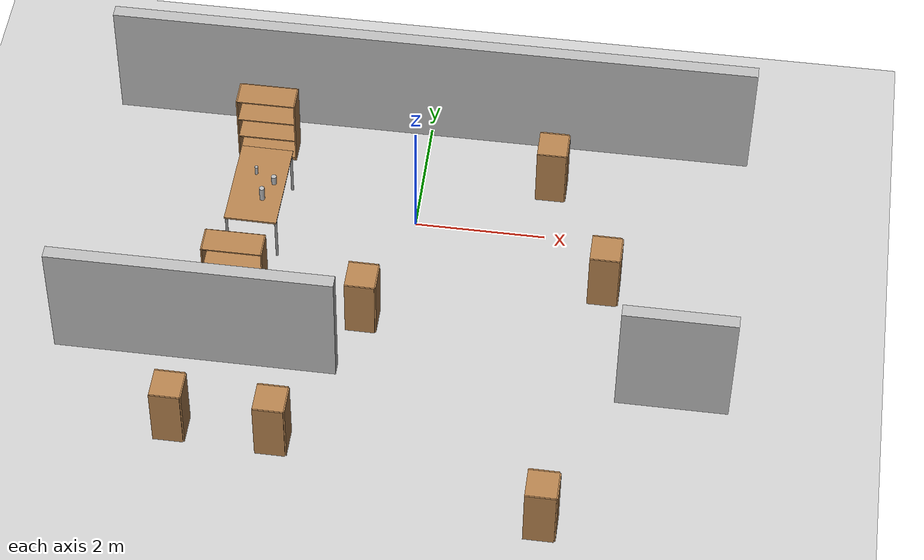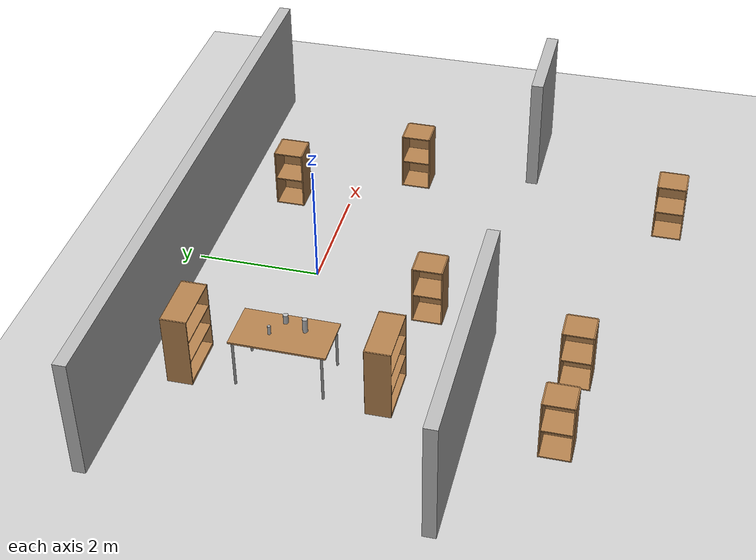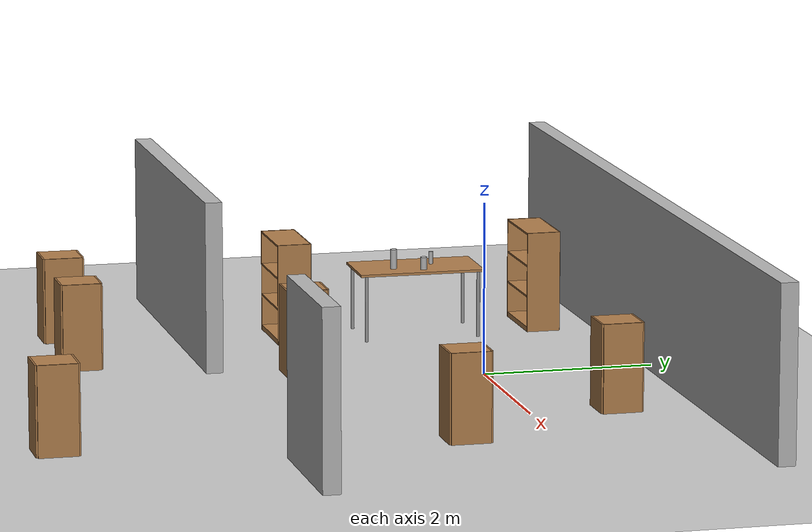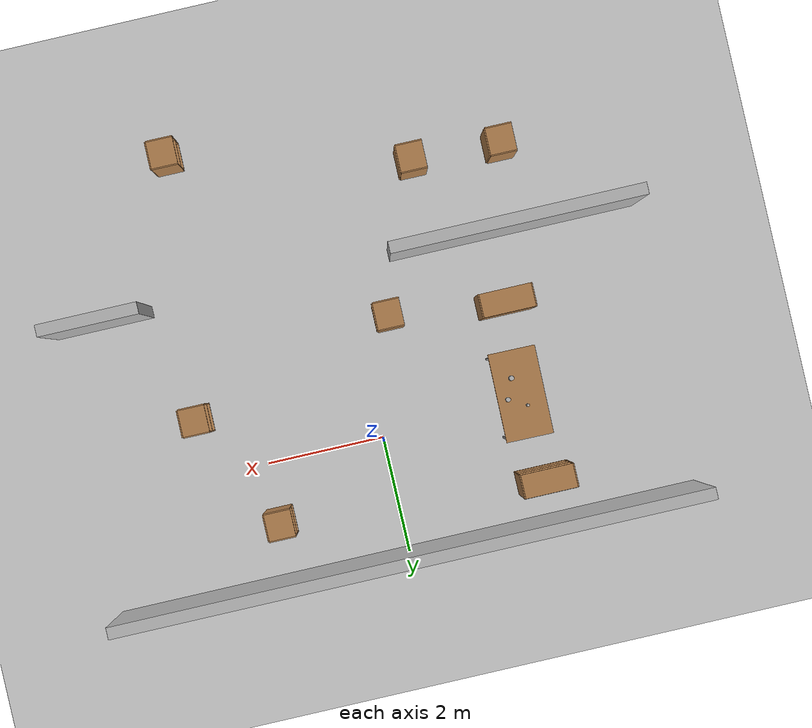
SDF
<sdf version="1.7">
 <world name="default">
  <model name="ground_plane">
   <static>1</static>
   <link name="link">
    <collision name="collision">
     <geometry><plane><normal>0 0 1</normal><size>100 100</size></plane></geometry>
     <surface><friction><ode><mu>100</mu><mu2>50</mu2></ode></friction></surface>
    </collision>
    <visual name="visual">
     <cast_shadows>0</cast_shadows>
     <geometry><plane><normal>0 0 1</normal><size>100 100</size></plane></geometry>
     <material>
      <script><uri>file://media/materials/scripts/gazebo.material</uri><name>Gazebo/Grey</name></script>
     </material>
    </visual>
    <velocity_decay><linear>0</linear><angular>0</angular></velocity_decay>
   </link>
  </model>
  <model name="wall_2_model">
   <pose>0 2 1 0 -0 0</pose>
   <static>1</static>
   <link name="wall_2_body">
    <inertial>
     <mass>1</mass>
     <inertia><ixx>1</ixx><ixy>0</ixy><ixz>0</ixz><iyy>1</iyy><iyz>0</iyz><izz>1</izz></inertia>
    </inertial>
    <collision name="collision"><geometry><box><size>10 0.2 2</size></box></geometry></collision>
    <visual name="visual"><geometry><box><size>10 0.2 2</size></box></geometry></visual>
    <velocity_decay><linear>0</linear><angular>0</angular></velocity_decay>
   </link>
  </model>
  <model name="wall_5_model">
   <pose>-2.89886 -3 1 0 -0 0</pose>
   <static>1</static>
   <link name="wall_5_body">
    <inertial>
     <mass>1</mass>
     <inertia><ixx>1</ixx><ixy>0</ixy><ixz>0</ixz><iyy>1</iyy><iyz>0</iyz><izz>1</izz></inertia>
    </inertial>
    <collision name="collision"><geometry><box><size>4.24454 0.2 2</size></box></geometry></collision>
    <visual name="visual"><geometry><box><size>4.24454 0.2 2</size></box></geometry></visual>
    <velocity_decay><linear>0</linear><angular>0</angular></velocity_decay>
   </link>
  </model>
  <model name="wall_6_model">
   <pose>4.18871 -2.96928 1 0 -0 0</pose>
   <static>1</static>
   <link name="wall_6_body">
    <inertial>
     <mass>1</mass>
     <inertia><ixx>1</ixx><ixy>0</ixy><ixz>0</ixz><iyy>1</iyy><iyz>0</iyz><izz>1</izz></inertia>
    </inertial>
    <collision name="collision"><geometry><box><size>1.67243 0.2 2</size></box></geometry></collision>
    <visual name="visual"><geometry><box><size>1.67243 0.2 2</size></box></geometry></visual>
    <velocity_decay><linear>0</linear><angular>0</angular></velocity_decay>
   </link>
  </model>
  <model name="cabinet">
   <static>0</static>
   <link name="cabinet_bottom_plate">
    <inertial>
     <pose>0 0 -1 0 -0 0</pose>
     <inertia><ixx>2.05</ixx><ixy>0</ixy><ixz>0</ixz><iyy>2.05</iyy><iyz>0</iyz><izz>2.05</izz></inertia>
     <mass>25</mass>
    </inertial>
    <collision name="cabinet_bottom_plate_geom">
     <pose>0 0 0.01 0 -0 0</pose>
     <geometry><box><size>0.45 0.45 0.02</size></box></geometry>
    </collision>
    <visual name="cabinet_bottom_plate_geom_visual">
     <pose>0 0 0.01 0 -0 0</pose>
     <geometry><box><size>0.45 0.45 0.02</size></box></geometry>
     <material>
      <script><uri>file://media/materials/scripts/gazebo.material</uri><name>Gazebo/Wood</name></script>
     </material>
    </visual>
    <collision name="cabinet_bottom_plate_geom_cabinet_back_plate">
     <pose>0.235 0 0.51 0 -0 0</pose>
     <geometry><box><size>0.02 0.45 1.02</size></box></geometry>
    </collision>
    <visual name="cabinet_bottom_plate_geom_cabinet_back_plate_visual">
     <pose>0.235 0 0.51 0 -0 0</pose>
     <geometry><box><size>0.02 0.45 1.02</size></box></geometry>
     <material>
      <script><uri>file://media/materials/scripts/gazebo.material</uri><name>Gazebo/Wood</name></script>
     </material>
    </visual>
    <collision name="cabinet_bottom_plate_geom_cabinet_left_plate">
     <pose>0 0.235 0.51 0 -0 0</pose>
     <geometry><box><size>0.45 0.02 1.02</size></box></geometry>
    </collision>
    <visual name="cabinet_bottom_plate_geom_cabinet_left_plate_visual">
     <pose>0 0.235 0.51 0 -0 0</pose>
     <geometry><box><size>0.45 0.02 1.02</size></box></geometry>
     <material>
      <script><uri>file://media/materials/scripts/gazebo.material</uri><name>Gazebo/Wood</name></script>
     </material>
    </visual>
    <collision name="cabinet_bottom_plate_geom_cabinet_middle_plate">
     <pose>0 0 0.51 0 -0 0</pose>
     <geometry><box><size>0.45 0.45 0.02</size></box></geometry>
    </collision>
    <visual name="cabinet_bottom_plate_geom_cabinet_middle_plate_visual">
     <pose>0 0 0.51 0 -0 0</pose>
     <geometry><box><size>0.45 0.45 0.02</size></box></geometry>
     <material>
      <script><uri>file://media/materials/scripts/gazebo.material</uri><name>Gazebo/Wood</name></script>
     </material>
    </visual>
    <collision name="cabinet_bottom_plate_geom_cabinet_right_plate">
     <pose>0 -0.235 0.51 0 -0 0</pose>
     <geometry><box><size>0.45 0.02 1.02</size></box></geometry>
    </collision>
    <visual name="cabinet_bottom_plate_geom_cabinet_right_plate_visual">
     <pose>0 -0.235 0.51 0 -0 0</pose>
     <geometry><box><size>0.45 0.02 1.02</size></box></geometry>
     <material>
      <script><uri>file://media/materials/scripts/gazebo.material</uri><name>Gazebo/Wood</name></script>
     </material>
    </visual>
    <collision name="cabinet_bottom_plate_geom_cabinet_top_plate">
     <pose>0 0 1.01 0 -0 0</pose>
     <geometry><box><size>0.45 0.45 0.02</size></box></geometry>
    </collision>
    <visual name="cabinet_bottom_plate_geom_cabinet_top_plate_visual">
     <pose>0 0 1.01 0 -0 0</pose>
     <geometry><box><size>0.45 0.45 0.02</size></box></geometry>
     <material>
      <script><uri>file://media/materials/scripts/gazebo.material</uri><name>Gazebo/Wood</name></script>
     </material>
    </visual>
    <velocity_decay><linear>0</linear><angular>0</angular></velocity_decay>
   </link>
   <pose>1.99517 1.00009 0 0 -1e-06 -0.000426</pose>
  </model>
  <model name="cabinet_0">
   <static>0</static>
   <link name="cabinet_bottom_plate">
    <inertial>
     <pose>0 0 -1 0 -0 0</pose>
     <inertia><ixx>2.05</ixx><ixy>0</ixy><ixz>0</ixz><iyy>2.05</iyy><iyz>0</iyz><izz>2.05</izz></inertia>
     <mass>25</mass>
    </inertial>
    <collision name="cabinet_bottom_plate_geom">
     <pose>0 0 0.01 0 -0 0</pose>
     <geometry><box><size>0.45 0.45 0.02</size></box></geometry>
    </collision>
    <visual name="cabinet_bottom_plate_geom_visual">
     <pose>0 0 0.01 0 -0 0</pose>
     <geometry><box><size>0.45 0.45 0.02</size></box></geometry>
     <material>
      <script><uri>file://media/materials/scripts/gazebo.material</uri><name>Gazebo/Wood</name></script>
     </material>
    </visual>
    <collision name="cabinet_bottom_plate_geom_cabinet_back_plate">
     <pose>0.235 0 0.51 0 -0 0</pose>
     <geometry><box><size>0.02 0.45 1.02</size></box></geometry>
    </collision>
    <visual name="cabinet_bottom_plate_geom_cabinet_back_plate_visual">
     <pose>0.235 0 0.51 0 -0 0</pose>
     <geometry><box><size>0.02 0.45 1.02</size></box></geometry>
     <material>
      <script><uri>file://media/materials/scripts/gazebo.material</uri><name>Gazebo/Wood</name></script>
     </material>
    </visual>
    <collision name="cabinet_bottom_plate_geom_cabinet_left_plate">
     <pose>0 0.235 0.51 0 -0 0</pose>
     <geometry><box><size>0.45 0.02 1.02</size></box></geometry>
    </collision>
    <visual name="cabinet_bottom_plate_geom_cabinet_left_plate_visual">
     <pose>0 0.235 0.51 0 -0 0</pose>
     <geometry><box><size>0.45 0.02 1.02</size></box></geometry>
     <material>
      <script><uri>file://media/materials/scripts/gazebo.material</uri><name>Gazebo/Wood</name></script>
     </material>
    </visual>
    <collision name="cabinet_bottom_plate_geom_cabinet_middle_plate">
     <pose>0 0 0.51 0 -0 0</pose>
     <geometry><box><size>0.45 0.45 0.02</size></box></geometry>
    </collision>
    <visual name="cabinet_bottom_plate_geom_cabinet_middle_plate_visual">
     <pose>0 0 0.51 0 -0 0</pose>
     <geometry><box><size>0.45 0.45 0.02</size></box></geometry>
     <material>
      <script><uri>file://media/materials/scripts/gazebo.material</uri><name>Gazebo/Wood</name></script>
     </material>
    </visual>
    <collision name="cabinet_bottom_plate_geom_cabinet_right_plate">
     <pose>0 -0.235 0.51 0 -0 0</pose>
     <geometry><box><size>0.45 0.02 1.02</size></box></geometry>
    </collision>
    <visual name="cabinet_bottom_plate_geom_cabinet_right_plate_visual">
     <pose>0 -0.235 0.51 0 -0 0</pose>
     <geometry><box><size>0.45 0.02 1.02</size></box></geometry>
     <material>
      <script><uri>file://media/materials/scripts/gazebo.material</uri><name>Gazebo/Wood</name></script>
     </material>
    </visual>
    <collision name="cabinet_bottom_plate_geom_cabinet_top_plate">
     <pose>0 0 1.01 0 -0 0</pose>
     <geometry><box><size>0.45 0.45 0.02</size></box></geometry>
    </collision>
    <visual name="cabinet_bottom_plate_geom_cabinet_top_plate_visual">
     <pose>0 0 1.01 0 -0 0</pose>
     <geometry><box><size>0.45 0.45 0.02</size></box></geometry>
     <material>
      <script><uri>file://media/materials/scripts/gazebo.material</uri><name>Gazebo/Wood</name></script>
     </material>
    </visual>
    <velocity_decay><linear>0</linear><angular>0</angular></velocity_decay>
   </link>
   <pose>2.51075 -5.43934 0 0 -1e-06 -0.003769</pose>
  </model>
  <model name="bookshelf_0">
   <static>0</static>
   <link name="link">
    <inertial>
     <mass>1</mass>
     <inertia><ixx>1</ixx><ixy>0</ixy><ixz>0</ixz><iyy>1</iyy><iyz>0</iyz><izz>1</izz></inertia>
    </inertial>
    <collision name="back">
     <pose>0 0.005 0.6 0 -0 0</pose>
     <geometry><box><size>0.9 0.01 1.2</size></box></geometry>
    </collision>
    <visual name="visual1">
     <pose>0 0.005 0.6 0 -0 0</pose>
     <geometry><box><size>0.9 0.01 1.2</size></box></geometry>
     <material>
      <script><uri>file://media/materials/scripts/gazebo.material</uri><name>Gazebo/Wood</name></script>
     </material>
    </visual>
    <collision name="left_side">
     <pose>0.45 -0.195 0.6 0 -0 0</pose>
     <geometry><box><size>0.02 0.4 1.2</size></box></geometry>
    </collision>
    <visual name="visual2">
     <pose>0.45 -0.195 0.6 0 -0 0</pose>
     <geometry><box><size>0.02 0.4 1.2</size></box></geometry>
     <material>
      <script><uri>file://media/materials/scripts/gazebo.material</uri><name>Gazebo/Wood</name></script>
     </material>
    </visual>
    <collision name="right_side">
     <pose>-0.45 -0.195 0.6 0 -0 0</pose>
     <geometry><box><size>0.02 0.4 1.2</size></box></geometry>
    </collision>
    <visual name="visual3">
     <pose>-0.45 -0.195 0.6 0 -0 0</pose>
     <geometry><box><size>0.02 0.4 1.2</size></box></geometry>
     <material>
      <script><uri>file://media/materials/scripts/gazebo.material</uri><name>Gazebo/Wood</name></script>
     </material>
    </visual>
    <collision name="bottom">
     <pose>0 -0.195 0.03 0 -0 0</pose>
     <geometry><box><size>0.88 0.4 0.06</size></box></geometry>
    </collision>
    <visual name="visual4">
     <pose>0 -0.195 0.03 0 -0 0</pose>
     <geometry><box><size>0.88 0.4 0.06</size></box></geometry>
     <material>
      <script><uri>file://media/materials/scripts/gazebo.material</uri><name>Gazebo/Wood</name></script>
     </material>
    </visual>
    <collision name="top">
     <pose>0 -0.195 1.19 0 -0 0</pose>
     <geometry><box><size>0.88 0.4 0.02</size></box></geometry>
    </collision>
    <visual name="visual5">
     <pose>0 -0.195 1.19 0 -0 0</pose>
     <geometry><box><size>0.88 0.4 0.02</size></box></geometry>
     <material>
      <script><uri>file://media/materials/scripts/gazebo.material</uri><name>Gazebo/Wood</name></script>
     </material>
    </visual>
    <collision name="low_shelf">
     <pose>0 -0.195 0.43 0 -0 0</pose>
     <geometry><box><size>0.88 0.4 0.02</size></box></geometry>
    </collision>
    <visual name="visual6">
     <pose>0 -0.195 0.43 0 -0 0</pose>
     <geometry><box><size>0.88 0.4 0.02</size></box></geometry>
     <material>
      <script><uri>file://media/materials/scripts/gazebo.material</uri><name>Gazebo/Wood</name></script>
     </material>
    </visual>
    <collision name="high_shelf">
     <pose>0 -0.195 0.8 0 -0 0</pose>
     <geometry><box><size>0.88 0.4 0.02</size></box></geometry>
    </collision>
    <visual name="visual7">
     <pose>0 -0.195 0.8 0 -0 0</pose>
     <geometry><box><size>0.88 0.4 0.02</size></box></geometry>
     <material>
      <script><uri>file://media/materials/scripts/gazebo.material</uri><name>Gazebo/Wood</name></script>
     </material>
    </visual>
    <velocity_decay><linear>0</linear><angular>0</angular></velocity_decay>
   </link>
   <pose>-2.49657 -1.57894 0 -1.7e-05 0 0</pose>
  </model>
  <model name="bookshelf_1">
   <static>0</static>
   <link name="link">
    <inertial>
     <mass>1</mass>
     <inertia><ixx>1</ixx><ixy>0</ixy><ixz>0</ixz><iyy>1</iyy><iyz>0</iyz><izz>1</izz></inertia>
    </inertial>
    <collision name="back">
     <pose>0 0.005 0.6 0 -0 0</pose>
     <geometry><box><size>0.9 0.01 1.2</size></box></geometry>
    </collision>
    <visual name="visual1">
     <pose>0 0.005 0.6 0 -0 0</pose>
     <geometry><box><size>0.9 0.01 1.2</size></box></geometry>
     <material>
      <script><uri>file://media/materials/scripts/gazebo.material</uri><name>Gazebo/Wood</name></script>
     </material>
    </visual>
    <collision name="left_side">
     <pose>0.45 -0.195 0.6 0 -0 0</pose>
     <geometry><box><size>0.02 0.4 1.2</size></box></geometry>
    </collision>
    <visual name="visual2">
     <pose>0.45 -0.195 0.6 0 -0 0</pose>
     <geometry><box><size>0.02 0.4 1.2</size></box></geometry>
     <material>
      <script><uri>file://media/materials/scripts/gazebo.material</uri><name>Gazebo/Wood</name></script>
     </material>
    </visual>
    <collision name="right_side">
     <pose>-0.45 -0.195 0.6 0 -0 0</pose>
     <geometry><box><size>0.02 0.4 1.2</size></box></geometry>
    </collision>
    <visual name="visual3">
     <pose>-0.45 -0.195 0.6 0 -0 0</pose>
     <geometry><box><size>0.02 0.4 1.2</size></box></geometry>
     <material>
      <script><uri>file://media/materials/scripts/gazebo.material</uri><name>Gazebo/Wood</name></script>
     </material>
    </visual>
    <collision name="bottom">
     <pose>0 -0.195 0.03 0 -0 0</pose>
     <geometry><box><size>0.88 0.4 0.06</size></box></geometry>
    </collision>
    <visual name="visual4">
     <pose>0 -0.195 0.03 0 -0 0</pose>
     <geometry><box><size>0.88 0.4 0.06</size></box></geometry>
     <material>
      <script><uri>file://media/materials/scripts/gazebo.material</uri><name>Gazebo/Wood</name></script>
     </material>
    </visual>
    <collision name="top">
     <pose>0 -0.195 1.19 0 -0 0</pose>
     <geometry><box><size>0.88 0.4 0.02</size></box></geometry>
    </collision>
    <visual name="visual5">
     <pose>0 -0.195 1.19 0 -0 0</pose>
     <geometry><box><size>0.88 0.4 0.02</size></box></geometry>
     <material>
      <script><uri>file://media/materials/scripts/gazebo.material</uri><name>Gazebo/Wood</name></script>
     </material>
    </visual>
    <collision name="low_shelf">
     <pose>0 -0.195 0.43 0 -0 0</pose>
     <geometry><box><size>0.88 0.4 0.02</size></box></geometry>
    </collision>
    <visual name="visual6">
     <pose>0 -0.195 0.43 0 -0 0</pose>
     <geometry><box><size>0.88 0.4 0.02</size></box></geometry>
     <material>
      <script><uri>file://media/materials/scripts/gazebo.material</uri><name>Gazebo/Wood</name></script>
     </material>
    </visual>
    <collision name="high_shelf">
     <pose>0 -0.195 0.8 0 -0 0</pose>
     <geometry><box><size>0.88 0.4 0.02</size></box></geometry>
    </collision>
    <visual name="visual7">
     <pose>0 -0.195 0.8 0 -0 0</pose>
     <geometry><box><size>0.88 0.4 0.02</size></box></geometry>
     <material>
      <script><uri>file://media/materials/scripts/gazebo.material</uri><name>Gazebo/Wood</name></script>
     </material>
    </visual>
    <velocity_decay><linear>0</linear><angular>0</angular></velocity_decay>
   </link>
   <pose>-2.49816 1.46785 -1e-06 -2.2e-05 2e-06 -3e-06</pose>
  </model>
  <model name="cabinet_1">
   <static>0</static>
   <link name="cabinet_bottom_plate">
    <inertial>
     <pose>0 0 -1 0 -0 0</pose>
     <inertia><ixx>2.05</ixx><ixy>0</ixy><ixz>0</ixz><iyy>2.05</iyy><iyz>0</iyz><izz>2.05</izz></inertia>
     <mass>25</mass>
    </inertial>
    <collision name="cabinet_bottom_plate_geom">
     <pose>0 0 0.01 0 -0 0</pose>
     <geometry><box><size>0.45 0.45 0.02</size></box></geometry>
    </collision>
    <visual name="cabinet_bottom_plate_geom_visual">
     <pose>0 0 0.01 0 -0 0</pose>
     <geometry><box><size>0.45 0.45 0.02</size></box></geometry>
     <material>
      <script><uri>file://media/materials/scripts/gazebo.material</uri><name>Gazebo/Wood</name></script>
     </material>
    </visual>
    <collision name="cabinet_bottom_plate_geom_cabinet_back_plate">
     <pose>0.235 0 0.51 0 -0 0</pose>
     <geometry><box><size>0.02 0.45 1.02</size></box></geometry>
    </collision>
    <visual name="cabinet_bottom_plate_geom_cabinet_back_plate_visual">
     <pose>0.235 0 0.51 0 -0 0</pose>
     <geometry><box><size>0.02 0.45 1.02</size></box></geometry>
     <material>
      <script><uri>file://media/materials/scripts/gazebo.material</uri><name>Gazebo/Wood</name></script>
     </material>
    </visual>
    <collision name="cabinet_bottom_plate_geom_cabinet_left_plate">
     <pose>0 0.235 0.51 0 -0 0</pose>
     <geometry><box><size>0.45 0.02 1.02</size></box></geometry>
    </collision>
    <visual name="cabinet_bottom_plate_geom_cabinet_left_plate_visual">
     <pose>0 0.235 0.51 0 -0 0</pose>
     <geometry><box><size>0.45 0.02 1.02</size></box></geometry>
     <material>
      <script><uri>file://media/materials/scripts/gazebo.material</uri><name>Gazebo/Wood</name></script>
     </material>
    </visual>
    <collision name="cabinet_bottom_plate_geom_cabinet_middle_plate">
     <pose>0 0 0.51 0 -0 0</pose>
     <geometry><box><size>0.45 0.45 0.02</size></box></geometry>
    </collision>
    <visual name="cabinet_bottom_plate_geom_cabinet_middle_plate_visual">
     <pose>0 0 0.51 0 -0 0</pose>
     <geometry><box><size>0.45 0.45 0.02</size></box></geometry>
     <material>
      <script><uri>file://media/materials/scripts/gazebo.material</uri><name>Gazebo/Wood</name></script>
     </material>
    </visual>
    <collision name="cabinet_bottom_plate_geom_cabinet_right_plate">
     <pose>0 -0.235 0.51 0 -0 0</pose>
     <geometry><box><size>0.45 0.02 1.02</size></box></geometry>
    </collision>
    <visual name="cabinet_bottom_plate_geom_cabinet_right_plate_visual">
     <pose>0 -0.235 0.51 0 -0 0</pose>
     <geometry><box><size>0.45 0.02 1.02</size></box></geometry>
     <material>
      <script><uri>file://media/materials/scripts/gazebo.material</uri><name>Gazebo/Wood</name></script>
     </material>
    </visual>
    <collision name="cabinet_bottom_plate_geom_cabinet_top_plate">
     <pose>0 0 1.01 0 -0 0</pose>
     <geometry><box><size>0.45 0.45 0.02</size></box></geometry>
    </collision>
    <visual name="cabinet_bottom_plate_geom_cabinet_top_plate_visual">
     <pose>0 0 1.01 0 -0 0</pose>
     <geometry><box><size>0.45 0.45 0.02</size></box></geometry>
     <material>
      <script><uri>file://media/materials/scripts/gazebo.material</uri><name>Gazebo/Wood</name></script>
     </material>
    </visual>
    <velocity_decay><linear>0</linear><angular>0</angular></velocity_decay>
   </link>
   <pose>-3.00498 -4.39991 0 0 -1e-06 -0.003769</pose>
  </model>
  <model name="cabinet_2">
   <static>0</static>
   <link name="cabinet_bottom_plate">
    <inertial>
     <pose>0 0 -1 0 -0 0</pose>
     <inertia><ixx>2.05</ixx><ixy>0</ixy><ixz>0</ixz><iyy>2.05</iyy><iyz>0</iyz><izz>2.05</izz></inertia>
     <mass>25</mass>
    </inertial>
    <collision name="cabinet_bottom_plate_geom">
     <pose>0 0 0.01 0 -0 0</pose>
     <geometry><box><size>0.45 0.45 0.02</size></box></geometry>
    </collision>
    <visual name="cabinet_bottom_plate_geom_visual">
     <pose>0 0 0.01 0 -0 0</pose>
     <geometry><box><size>0.45 0.45 0.02</size></box></geometry>
     <material>
      <script><uri>file://media/materials/scripts/gazebo.material</uri><name>Gazebo/Wood</name></script>
     </material>
    </visual>
    <collision name="cabinet_bottom_plate_geom_cabinet_back_plate">
     <pose>0.235 0 0.51 0 -0 0</pose>
     <geometry><box><size>0.02 0.45 1.02</size></box></geometry>
    </collision>
    <visual name="cabinet_bottom_plate_geom_cabinet_back_plate_visual">
     <pose>0.235 0 0.51 0 -0 0</pose>
     <geometry><box><size>0.02 0.45 1.02</size></box></geometry>
     <material>
      <script><uri>file://media/materials/scripts/gazebo.material</uri><name>Gazebo/Wood</name></script>
     </material>
    </visual>
    <collision name="cabinet_bottom_plate_geom_cabinet_left_plate">
     <pose>0 0.235 0.51 0 -0 0</pose>
     <geometry><box><size>0.45 0.02 1.02</size></box></geometry>
    </collision>
    <visual name="cabinet_bottom_plate_geom_cabinet_left_plate_visual">
     <pose>0 0.235 0.51 0 -0 0</pose>
     <geometry><box><size>0.45 0.02 1.02</size></box></geometry>
     <material>
      <script><uri>file://media/materials/scripts/gazebo.material</uri><name>Gazebo/Wood</name></script>
     </material>
    </visual>
    <collision name="cabinet_bottom_plate_geom_cabinet_middle_plate">
     <pose>0 0 0.51 0 -0 0</pose>
     <geometry><box><size>0.45 0.45 0.02</size></box></geometry>
    </collision>
    <visual name="cabinet_bottom_plate_geom_cabinet_middle_plate_visual">
     <pose>0 0 0.51 0 -0 0</pose>
     <geometry><box><size>0.45 0.45 0.02</size></box></geometry>
     <material>
      <script><uri>file://media/materials/scripts/gazebo.material</uri><name>Gazebo/Wood</name></script>
     </material>
    </visual>
    <collision name="cabinet_bottom_plate_geom_cabinet_right_plate">
     <pose>0 -0.235 0.51 0 -0 0</pose>
     <geometry><box><size>0.45 0.02 1.02</size></box></geometry>
    </collision>
    <visual name="cabinet_bottom_plate_geom_cabinet_right_plate_visual">
     <pose>0 -0.235 0.51 0 -0 0</pose>
     <geometry><box><size>0.45 0.02 1.02</size></box></geometry>
     <material>
      <script><uri>file://media/materials/scripts/gazebo.material</uri><name>Gazebo/Wood</name></script>
     </material>
    </visual>
    <collision name="cabinet_bottom_plate_geom_cabinet_top_plate">
     <pose>0 0 1.01 0 -0 0</pose>
     <geometry><box><size>0.45 0.45 0.02</size></box></geometry>
    </collision>
    <visual name="cabinet_bottom_plate_geom_cabinet_top_plate_visual">
     <pose>0 0 1.01 0 -0 0</pose>
     <geometry><box><size>0.45 0.45 0.02</size></box></geometry>
     <material>
      <script><uri>file://media/materials/scripts/gazebo.material</uri><name>Gazebo/Wood</name></script>
     </material>
    </visual>
    <velocity_decay><linear>0</linear><angular>0</angular></velocity_decay>
   </link>
   <pose>-1.49681 -4.45607 0 0 -1e-06 -0.003769</pose>
  </model>
  <model name="cabinet_3">
   <static>0</static>
   <link name="cabinet_bottom_plate">
    <inertial>
     <pose>0 0 -1 0 -0 0</pose>
     <inertia><ixx>2.05</ixx><ixy>0</ixy><ixz>0</ixz><iyy>2.05</iyy><iyz>0</iyz><izz>2.05</izz></inertia>
     <mass>25</mass>
    </inertial>
    <collision name="cabinet_bottom_plate_geom">
     <pose>0 0 0.01 0 -0 0</pose>
     <geometry><box><size>0.45 0.45 0.02</size></box></geometry>
    </collision>
    <visual name="cabinet_bottom_plate_geom_visual">
     <pose>0 0 0.01 0 -0 0</pose>
     <geometry><box><size>0.45 0.45 0.02</size></box></geometry>
     <material>
      <script><uri>file://media/materials/scripts/gazebo.material</uri><name>Gazebo/Wood</name></script>
     </material>
    </visual>
    <collision name="cabinet_bottom_plate_geom_cabinet_back_plate">
     <pose>0.235 0 0.51 0 -0 0</pose>
     <geometry><box><size>0.02 0.45 1.02</size></box></geometry>
    </collision>
    <visual name="cabinet_bottom_plate_geom_cabinet_back_plate_visual">
     <pose>0.235 0 0.51 0 -0 0</pose>
     <geometry><box><size>0.02 0.45 1.02</size></box></geometry>
     <material>
      <script><uri>file://media/materials/scripts/gazebo.material</uri><name>Gazebo/Wood</name></script>
     </material>
    </visual>
    <collision name="cabinet_bottom_plate_geom_cabinet_left_plate">
     <pose>0 0.235 0.51 0 -0 0</pose>
     <geometry><box><size>0.45 0.02 1.02</size></box></geometry>
    </collision>
    <visual name="cabinet_bottom_plate_geom_cabinet_left_plate_visual">
     <pose>0 0.235 0.51 0 -0 0</pose>
     <geometry><box><size>0.45 0.02 1.02</size></box></geometry>
     <material>
      <script><uri>file://media/materials/scripts/gazebo.material</uri><name>Gazebo/Wood</name></script>
     </material>
    </visual>
    <collision name="cabinet_bottom_plate_geom_cabinet_middle_plate">
     <pose>0 0 0.51 0 -0 0</pose>
     <geometry><box><size>0.45 0.45 0.02</size></box></geometry>
    </collision>
    <visual name="cabinet_bottom_plate_geom_cabinet_middle_plate_visual">
     <pose>0 0 0.51 0 -0 0</pose>
     <geometry><box><size>0.45 0.45 0.02</size></box></geometry>
     <material>
      <script><uri>file://media/materials/scripts/gazebo.material</uri><name>Gazebo/Wood</name></script>
     </material>
    </visual>
    <collision name="cabinet_bottom_plate_geom_cabinet_right_plate">
     <pose>0 -0.235 0.51 0 -0 0</pose>
     <geometry><box><size>0.45 0.02 1.02</size></box></geometry>
    </collision>
    <visual name="cabinet_bottom_plate_geom_cabinet_right_plate_visual">
     <pose>0 -0.235 0.51 0 -0 0</pose>
     <geometry><box><size>0.45 0.02 1.02</size></box></geometry>
     <material>
      <script><uri>file://media/materials/scripts/gazebo.material</uri><name>Gazebo/Wood</name></script>
     </material>
    </visual>
    <collision name="cabinet_bottom_plate_geom_cabinet_top_plate">
     <pose>0 0 1.01 0 -0 0</pose>
     <geometry><box><size>0.45 0.45 0.02</size></box></geometry>
    </collision>
    <visual name="cabinet_bottom_plate_geom_cabinet_top_plate_visual">
     <pose>0 0 1.01 0 -0 0</pose>
     <geometry><box><size>0.45 0.45 0.02</size></box></geometry>
     <material>
      <script><uri>file://media/materials/scripts/gazebo.material</uri><name>Gazebo/Wood</name></script>
     </material>
    </visual>
    <velocity_decay><linear>0</linear><angular>0</angular></velocity_decay>
   </link>
   <pose>2.99508 -0.999871 0 0 -1e-06 -0.003772</pose>
  </model>
  <model name="cabinet_4">
   <static>0</static>
   <link name="cabinet_bottom_plate">
    <inertial>
     <pose>0 0 -1 0 -0 0</pose>
     <inertia><ixx>2.05</ixx><ixy>0</ixy><ixz>0</ixz><iyy>2.05</iyy><iyz>0</iyz><izz>2.05</izz></inertia>
     <mass>25</mass>
    </inertial>
    <collision name="cabinet_bottom_plate_geom">
     <pose>0 0 0.01 0 -0 0</pose>
     <geometry><box><size>0.45 0.45 0.02</size></box></geometry>
    </collision>
    <visual name="cabinet_bottom_plate_geom_visual">
     <pose>0 0 0.01 0 -0 0</pose>
     <geometry><box><size>0.45 0.45 0.02</size></box></geometry>
     <material>
      <script><uri>file://media/materials/scripts/gazebo.material</uri><name>Gazebo/Wood</name></script>
     </material>
    </visual>
    <collision name="cabinet_bottom_plate_geom_cabinet_back_plate">
     <pose>0.235 0 0.51 0 -0 0</pose>
     <geometry><box><size>0.02 0.45 1.02</size></box></geometry>
    </collision>
    <visual name="cabinet_bottom_plate_geom_cabinet_back_plate_visual">
     <pose>0.235 0 0.51 0 -0 0</pose>
     <geometry><box><size>0.02 0.45 1.02</size></box></geometry>
     <material>
      <script><uri>file://media/materials/scripts/gazebo.material</uri><name>Gazebo/Wood</name></script>
     </material>
    </visual>
    <collision name="cabinet_bottom_plate_geom_cabinet_left_plate">
     <pose>0 0.235 0.51 0 -0 0</pose>
     <geometry><box><size>0.45 0.02 1.02</size></box></geometry>
    </collision>
    <visual name="cabinet_bottom_plate_geom_cabinet_left_plate_visual">
     <pose>0 0.235 0.51 0 -0 0</pose>
     <geometry><box><size>0.45 0.02 1.02</size></box></geometry>
     <material>
      <script><uri>file://media/materials/scripts/gazebo.material</uri><name>Gazebo/Wood</name></script>
     </material>
    </visual>
    <collision name="cabinet_bottom_plate_geom_cabinet_middle_plate">
     <pose>0 0 0.51 0 -0 0</pose>
     <geometry><box><size>0.45 0.45 0.02</size></box></geometry>
    </collision>
    <visual name="cabinet_bottom_plate_geom_cabinet_middle_plate_visual">
     <pose>0 0 0.51 0 -0 0</pose>
     <geometry><box><size>0.45 0.45 0.02</size></box></geometry>
     <material>
      <script><uri>file://media/materials/scripts/gazebo.material</uri><name>Gazebo/Wood</name></script>
     </material>
    </visual>
    <collision name="cabinet_bottom_plate_geom_cabinet_right_plate">
     <pose>0 -0.235 0.51 0 -0 0</pose>
     <geometry><box><size>0.45 0.02 1.02</size></box></geometry>
    </collision>
    <visual name="cabinet_bottom_plate_geom_cabinet_right_plate_visual">
     <pose>0 -0.235 0.51 0 -0 0</pose>
     <geometry><box><size>0.45 0.02 1.02</size></box></geometry>
     <material>
      <script><uri>file://media/materials/scripts/gazebo.material</uri><name>Gazebo/Wood</name></script>
     </material>
    </visual>
    <collision name="cabinet_bottom_plate_geom_cabinet_top_plate">
     <pose>0 0 1.01 0 -0 0</pose>
     <geometry><box><size>0.45 0.45 0.02</size></box></geometry>
    </collision>
    <visual name="cabinet_bottom_plate_geom_cabinet_top_plate_visual">
     <pose>0 0 1.01 0 -0 0</pose>
     <geometry><box><size>0.45 0.45 0.02</size></box></geometry>
     <material>
      <script><uri>file://media/materials/scripts/gazebo.material</uri><name>Gazebo/Wood</name></script>
     </material>
    </visual>
    <velocity_decay><linear>0</linear><angular>0</angular></velocity_decay>
   </link>
   <pose>-0.541999 -1.99985 0 0 -1e-06 -0.003769</pose>
  </model>
  <model name="table_0_clone">
   <static>0</static>
   <link name="link">
    <collision name="surface">
     <pose>0 0 0.9 0 -0 0</pose>
     <geometry><box><size>1.5 0.8 0.03</size></box></geometry>
    </collision>
    <visual name="visual1">
     <pose>0 0 0.9 0 -0 0</pose>
     <geometry><box><size>1.5 0.8 0.03</size></box></geometry>
     <material>
      <script><uri>file://media/materials/scripts/gazebo.material</uri><name>Gazebo/Wood</name></script>
     </material>
    </visual>
    <collision name="front_left_leg">
     <pose>0.68 0.38 0.5 0 -0 0</pose>
     <geometry><cylinder><radius>0.02</radius><length>0.8</length></cylinder></geometry>
    </collision>
    <visual name="front_left_leg">
     <pose>0.68 0.38 0.5 0 -0 0</pose>
     <geometry><cylinder><radius>0.02</radius><length>0.8</length></cylinder></geometry>
     <material>
      <script><uri>file://media/materials/scripts/gazebo.material</uri><name>Gazebo/Grey</name></script>
     </material>
    </visual>
    <collision name="front_right_leg">
     <pose>0.68 -0.38 0.5 0 -0 0</pose>
     <geometry><cylinder><radius>0.02</radius><length>0.8</length></cylinder></geometry>
    </collision>
    <visual name="front_right_leg">
     <pose>0.68 -0.38 0.5 0 -0 0</pose>
     <geometry><cylinder><radius>0.02</radius><length>0.8</length></cylinder></geometry>
     <material>
      <script><uri>file://media/materials/scripts/gazebo.material</uri><name>Gazebo/Grey</name></script>
     </material>
    </visual>
    <collision name="back_right_leg">
     <pose>-0.68 -0.38 0.5 0 -0 0</pose>
     <geometry><cylinder><radius>0.02</radius><length>0.8</length></cylinder></geometry>
    </collision>
    <visual name="back_right_leg">
     <pose>-0.68 -0.38 0.5 0 -0 0</pose>
     <geometry><cylinder><radius>0.02</radius><length>0.8</length></cylinder></geometry>
     <material>
      <script><uri>file://media/materials/scripts/gazebo.material</uri><name>Gazebo/Grey</name></script>
     </material>
    </visual>
    <collision name="back_left_leg">
     <pose>-0.68 0.38 0.5 0 -0 0</pose>
     <geometry><cylinder><radius>0.02</radius><length>0.8</length></cylinder></geometry>
    </collision>
    <visual name="back_left_leg">
     <pose>-0.68 0.38 0.5 0 -0 0</pose>
     <geometry><cylinder><radius>0.02</radius><length>0.8</length></cylinder></geometry>
     <material>
      <script><uri>file://media/materials/scripts/gazebo.material</uri><name>Gazebo/Grey</name></script>
     </material>
    </visual>
    <velocity_decay><linear>0</linear><angular>0</angular></velocity_decay>
    <inertial>
     <inertia><ixx>1</ixx><ixy>0</ixy><ixz>0</ixz><iyy>1</iyy><iyz>0</iyz><izz>1</izz></inertia>
     <mass>1</mass>
    </inertial>
   </link>
   <pose>-2.39254 -0.217505 -0.111571 -0.001037 0.000709 -1.58176</pose>
  </model>
  <model name="pringles_0">
   <static>0</static>
   <link name="link">
    <inertial>
     <mass>0.25</mass>
     <inertia><ixx>0</ixx><ixy>0</ixy><ixz>0</ixz><iyy>0</iyy><iyz>0</iyz><izz>0</izz></inertia>
    </inertial>
    <collision name="collision">
     <geometry><cylinder><radius>0.04</radius><length>0.235</length></cylinder></geometry>
    </collision>
    <visual name="visual">
     <geometry><cylinder><radius>0.04</radius><length>0.235</length></cylinder></geometry>
     <material>
      <script>
       <uri>model://pringles/material/scripts</uri>
       <uri>model://pringles/material/textures</uri>
       <name>Custom/pringles</name>
      </script>
     </material>
    </visual>
    <velocity_decay><linear>0</linear><angular>0</angular></velocity_decay>
   </link>
   <pose>-2.28717 -0.508502 0.920624 0.001031 0.000287 0.004368</pose>
  </model>
  <model name="sprite_0">
   <static>0</static>
   <link name="link">
    <inertial>
     <mass>0.25</mass>
     <inertia><ixx>0</ixx><ixy>0</ixy><ixz>0</ixz><iyy>0</iyy><iyz>0</iyz><izz>0</izz></inertia>
    </inertial>
    <collision name="collision">
     <pose>0 0 0.075 -3.14159 -0 0</pose>
     <geometry><cylinder><radius>0.04</radius><length>0.15</length></cylinder></geometry>
    </collision>
    <visual name="visual">
     <pose>0 0 0.075 -3.14159 -0 0</pose>
     <geometry><cylinder><radius>0.04</radius><length>0.15</length></cylinder></geometry>
     <material>
      <script>
       <uri>model://sprite/material/scripts</uri>
       <uri>model://sprite/material/textures</uri>
       <name>Custom/sprite</name>
      </script>
     </material>
    </visual>
    <velocity_decay><linear>0</linear><angular>0</angular></velocity_decay>
   </link>
   <pose>-2.16109 -0.172471 0.803218 0.000999 0.001227 0.001025</pose>
  </model>
  <model name="biscuits_pack_0">
   <static>0</static>
   <link name="link">
    <inertial>
     <mass>0.01</mass>
     <inertia><ixx>0.001</ixx><ixy>0</ixy><ixz>0</ixz><iyy>0.001</iyy><iyz>0</iyz><izz>0.001</izz></inertia>
    </inertial>
    <collision name="collision">
     <geometry><cylinder><radius>0.025</radius><length>0.15</length></cylinder></geometry>
     <surface><contact><ode><min_depth>0.005</min_depth></ode></contact></surface>
    </collision>
    <visual name="visual">
     <geometry><cylinder><radius>0.025</radius><length>0.15</length></cylinder></geometry>
     <material>
      <script>
       <uri>model://biscuits_pack/material/scripts</uri>
       <uri>model://biscuits_pack/material/textures</uri>
       <name>Custom/biscuits_pack</name>
      </script>
     </material>
    </visual>
   </link>
   <pose>-2.45974 -0.010518 0.878639 0.000463 0.000704 -0.000404</pose>
  </model>
 </world>
</sdf>
